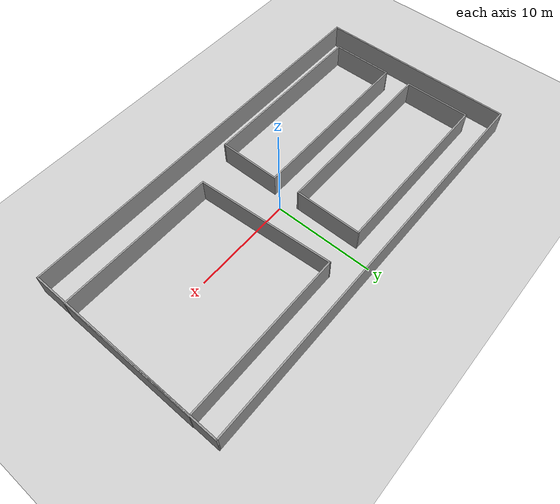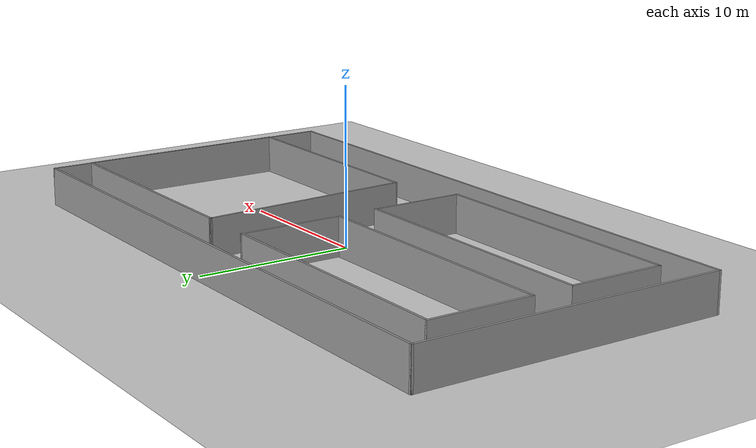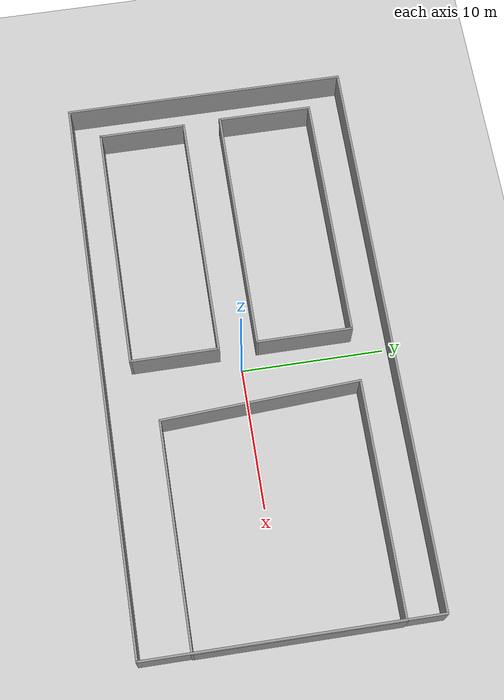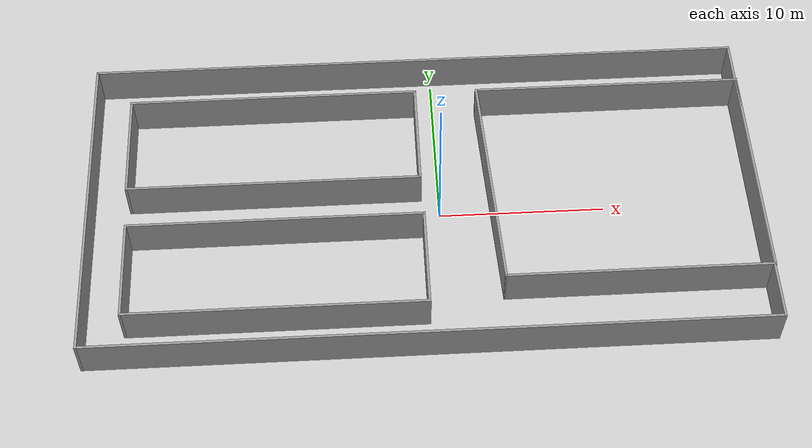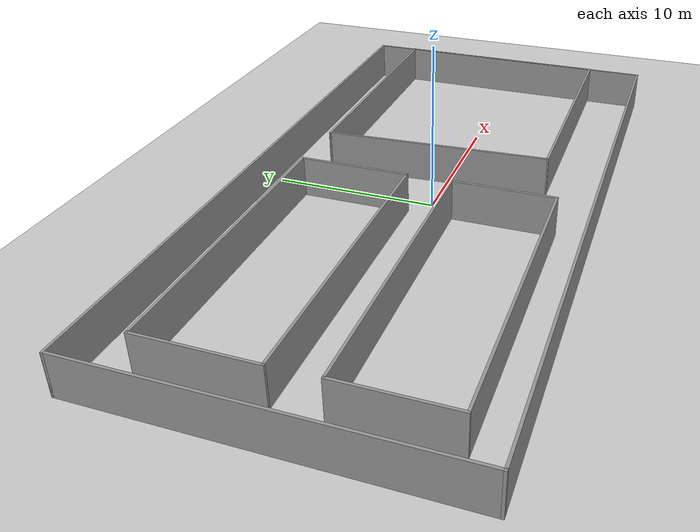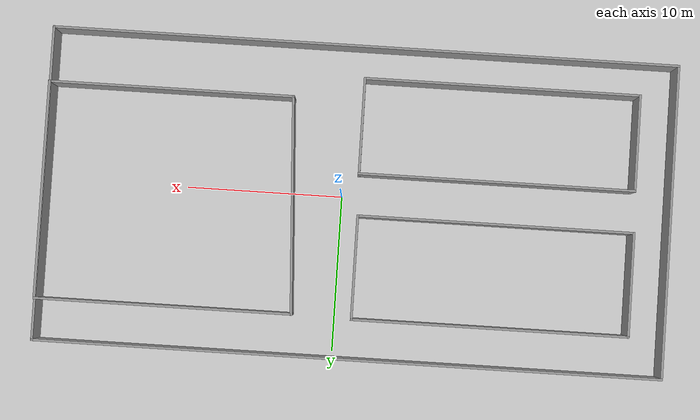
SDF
<sdf version="1.6">
 <world name="default">
  <light name="sun" type="directional">
   <pose>0 0 10 0 -0 0</pose>
   <diffuse>0.8 0.8 0.8 1</diffuse>
   <specular>0.2 0.2 0.2 1</specular>
   <attenuation>
    <range>1000</range>
    <constant>0.9</constant>
    <linear>0.01</linear>
    <quadratic>0.001</quadratic>
   </attenuation>
   <direction>-0.5 0.1 -0.9</direction>
  </light>
  <model name="ground_plane">
   <static>1</static>
   <link name="link">
    <collision name="collision">
     <geometry><plane><normal>0 0 1</normal><size>100 100</size></plane></geometry>
     <surface>
      <contact><collide_bitmask>65535</collide_bitmask></contact>
      <friction><ode><mu>100</mu><mu2>50</mu2></ode></friction>
     </surface>
    </collision>
    <visual name="visual">
     <cast_shadows>0</cast_shadows>
     <geometry><plane><normal>0 0 1</normal><size>100 100</size></plane></geometry>
     <material>
      <script><uri>file://media/materials/scripts/gazebo.material</uri><name>Gazebo/Grey</name></script>
     </material>
    </visual>
   </link>
  </model>
  <gravity>0 0 -9.8</gravity>
  <magnetic_field>6e-06 2.3e-05 -4.2e-05</magnetic_field>
  <atmosphere type="adiabatic"/>
  <physics name="default_physics" default="0" type="ode">
   <max_step_size>0.001</max_step_size>
   <real_time_factor>1</real_time_factor>
   <real_time_update_rate>1000</real_time_update_rate>
  </physics>
  <scene><ambient>0.4 0.4 0.4 1</ambient><background>0.7 0.7 0.7 1</background><shadows>1</shadows></scene>
  <audio><device>default</device></audio>
  <spherical_coordinates>
   <surface_model>EARTH_WGS84</surface_model>
   <latitude_deg>0</latitude_deg>
   <longitude_deg>0</longitude_deg>
   <elevation>0</elevation>
   <heading_deg>0</heading_deg>
  </spherical_coordinates>
  <model name="sec2">
   <pose>-0.953085 0.392455 0 0 -0 0</pose>
   <link name="Wall_0">
    <collision name="Wall_0_Collision">
     <geometry><box><size>40.15 0.15 2.5</size></box></geometry>
     <pose>0 0 1.25 0 -0 0</pose>
    </collision>
    <visual name="Wall_0_Visual">
     <pose>0 0 1.25 0 -0 0</pose>
     <geometry><box><size>40.15 0.15 2.5</size></box></geometry>
     <material>
      <script><uri>file://media/materials/scripts/gazebo.material</uri><name>Gazebo/Grey</name></script>
      <ambient>1 1 1 1</ambient>
     </material>
     <meta><layer>0</layer></meta>
    </visual>
    <pose>-0.023238 10 0 0 -0 0</pose>
   </link>
   <link name="Wall_1">
    <collision name="Wall_1_Collision">
     <geometry><box><size>20.15 0.15 2.5</size></box></geometry>
     <pose>0 0 1.25 0 -0 0</pose>
    </collision>
    <visual name="Wall_1_Visual">
     <pose>0 0 1.25 0 -0 0</pose>
     <geometry><box><size>20.15 0.15 2.5</size></box></geometry>
     <material>
      <script><uri>file://media/materials/scripts/gazebo.material</uri><name>Gazebo/Grey</name></script>
      <ambient>1 1 1 1</ambient>
     </material>
     <meta><layer>0</layer></meta>
    </visual>
    <pose>19.9768 0 0 0 -0 -1.5708</pose>
   </link>
   <link name="Wall_10">
    <collision name="Wall_10_Collision">
     <geometry><box><size>17.75 0.15 2.5</size></box></geometry>
     <pose>0 0 1.25 0 -0 0</pose>
    </collision>
    <visual name="Wall_10_Visual">
     <pose>0 0 1.25 0 -0 0</pose>
     <geometry><box><size>17.75 0.15 2.5</size></box></geometry>
     <material>
      <script><uri>file://media/materials/scripts/gazebo.material</uri><name>Gazebo/Grey</name></script>
      <ambient>1 1 1 1</ambient>
     </material>
     <meta><layer>0</layer></meta>
    </visual>
    <pose>-8.87076 -1.84852 0 0 -0 0</pose>
   </link>
   <link name="Wall_11">
    <collision name="Wall_11_Collision">
     <geometry><box><size>6.25 0.15 2.5</size></box></geometry>
     <pose>0 0 1.25 0 -0 0</pose>
    </collision>
    <visual name="Wall_11_Visual">
     <pose>0 0 1.25 0 -0 0</pose>
     <geometry><box><size>6.25 0.15 2.5</size></box></geometry>
     <material>
      <script><uri>file://media/materials/scripts/gazebo.material</uri><name>Gazebo/Grey</name></script>
      <ambient>1 1 1 1</ambient>
     </material>
     <meta><layer>0</layer></meta>
    </visual>
    <pose>-0.070761 -4.89852 0 0 -0 -1.5708</pose>
   </link>
   <link name="Wall_12">
    <collision name="Wall_12_Collision">
     <geometry><box><size>17.75 0.15 2.5</size></box></geometry>
     <pose>0 0 1.25 0 -0 0</pose>
    </collision>
    <visual name="Wall_12_Visual">
     <pose>0 0 1.25 0 -0 0</pose>
     <geometry><box><size>17.75 0.15 2.5</size></box></geometry>
     <material>
      <script><uri>file://media/materials/scripts/gazebo.material</uri><name>Gazebo/Grey</name></script>
      <ambient>1 1 1 1</ambient>
     </material>
     <meta><layer>0</layer></meta>
    </visual>
    <pose>-8.87076 -7.94852 0 0 -0 3.14159</pose>
   </link>
   <link name="Wall_13">
    <collision name="Wall_13_Collision">
     <geometry><box><size>6.25 0.15 2.5</size></box></geometry>
     <pose>0 0 1.25 0 -0 0</pose>
    </collision>
    <visual name="Wall_13_Visual">
     <pose>0 0 1.25 0 -0 0</pose>
     <geometry><box><size>6.25 0.15 2.5</size></box></geometry>
     <material>
      <script><uri>file://media/materials/scripts/gazebo.material</uri><name>Gazebo/Grey</name></script>
      <ambient>1 1 1 1</ambient>
     </material>
     <meta><layer>0</layer></meta>
    </visual>
    <pose>-17.6708 -4.89852 0 0 -0 1.5708</pose>
   </link>
   <link name="Wall_15">
    <collision name="Wall_15_Collision">
     <geometry><box><size>16.5 0.15 2.5</size></box></geometry>
     <pose>0 0 1.25 0 -0 0</pose>
    </collision>
    <visual name="Wall_15_Visual">
     <pose>0 0 1.25 0 -0 0</pose>
     <geometry><box><size>16.5 0.15 2.5</size></box></geometry>
     <material>
      <script><uri>file://media/materials/scripts/gazebo.material</uri><name>Gazebo/Grey</name></script>
      <ambient>1 1 1 1</ambient>
     </material>
     <meta><layer>0</layer></meta>
    </visual>
    <pose>11.8482 7.35148 0 0 -0 0</pose>
   </link>
   <link name="Wall_16">
    <collision name="Wall_16_Collision">
     <geometry><box><size>14 0.15 2.5</size></box></geometry>
     <pose>0 0 1.25 0 -0 0</pose>
    </collision>
    <visual name="Wall_16_Visual">
     <pose>0 0 1.25 0 -0 0</pose>
     <geometry><box><size>14 0.15 2.5</size></box></geometry>
     <material>
      <script><uri>file://media/materials/scripts/gazebo.material</uri><name>Gazebo/Grey</name></script>
      <ambient>1 1 1 1</ambient>
     </material>
     <meta><layer>0</layer></meta>
    </visual>
    <pose>20.0232 0.42648 0 0 -0 -1.5708</pose>
   </link>
   <link name="Wall_17">
    <collision name="Wall_17_Collision">
     <geometry><box><size>15.75 0.15 2.5</size></box></geometry>
     <pose>0 0 1.25 0 -0 0</pose>
    </collision>
    <visual name="Wall_17_Visual">
     <pose>0 0 1.25 0 -0 0</pose>
     <geometry><box><size>15.75 0.15 2.5</size></box></geometry>
     <material>
      <script><uri>file://media/materials/scripts/gazebo.material</uri><name>Gazebo/Grey</name></script>
      <ambient>1 1 1 1</ambient>
     </material>
     <meta><layer>0</layer></meta>
    </visual>
    <pose>12.2232 -6.49852 0 0 -0 3.14159</pose>
   </link>
   <link name="Wall_18">
    <collision name="Wall_18_Collision">
     <geometry><box><size>14.0203 0.15 2.5</size></box></geometry>
     <pose>0 0 1.25 0 -0 0</pose>
    </collision>
    <visual name="Wall_18_Visual">
     <pose>0 0 1.25 0 -0 0</pose>
     <geometry><box><size>14.0203 0.15 2.5</size></box></geometry>
     <material>
      <script><uri>file://media/materials/scripts/gazebo.material</uri><name>Gazebo/Grey</name></script>
      <ambient>1 1 1 1</ambient>
     </material>
     <meta><layer>0</layer></meta>
    </visual>
    <pose>4.04824 0.42648 0 0 -0 1.62489</pose>
   </link>
   <link name="Wall_2">
    <collision name="Wall_2_Collision">
     <geometry><box><size>40.15 0.15 2.5</size></box></geometry>
     <pose>0 0 1.25 0 -0 0</pose>
    </collision>
    <visual name="Wall_2_Visual">
     <pose>0 0 1.25 0 -0 0</pose>
     <geometry><box><size>40.15 0.15 2.5</size></box></geometry>
     <material>
      <script><uri>file://media/materials/scripts/gazebo.material</uri><name>Gazebo/Grey</name></script>
      <ambient>1 1 1 1</ambient>
     </material>
     <meta><layer>0</layer></meta>
    </visual>
    <pose>-0.023238 -10 0 0 -0 3.14159</pose>
   </link>
   <link name="Wall_3">
    <collision name="Wall_3_Collision">
     <geometry><box><size>20.15 0.15 2.5</size></box></geometry>
     <pose>0 0 1.25 0 -0 0</pose>
    </collision>
    <visual name="Wall_3_Visual">
     <pose>0 0 1.25 0 -0 0</pose>
     <geometry><box><size>20.15 0.15 2.5</size></box></geometry>
     <material>
      <script><uri>file://media/materials/scripts/gazebo.material</uri><name>Gazebo/Grey</name></script>
      <ambient>1 1 1 1</ambient>
     </material>
     <meta><layer>0</layer></meta>
    </visual>
    <pose>-20.0232 0 0 0 -0 1.5708</pose>
   </link>
   <link name="Wall_5">
    <collision name="Wall_5_Collision">
     <geometry><box><size>17.75 0.15 2.5</size></box></geometry>
     <pose>0 0 1.25 0 -0 0</pose>
    </collision>
    <visual name="Wall_5_Visual">
     <pose>0 0 1.25 0 -0 0</pose>
     <geometry><box><size>17.75 0.15 2.5</size></box></geometry>
     <material>
      <script><uri>file://media/materials/scripts/gazebo.material</uri><name>Gazebo/Grey</name></script>
      <ambient>1 1 1 1</ambient>
     </material>
     <meta><layer>0</layer></meta>
    </visual>
    <pose>-8.96276 7.44348 0 0 -0 0</pose>
   </link>
   <link name="Wall_6">
    <collision name="Wall_6_Collision">
     <geometry><box><size>6.75 0.15 2.5</size></box></geometry>
     <pose>0 0 1.25 0 -0 0</pose>
    </collision>
    <visual name="Wall_6_Visual">
     <pose>0 0 1.25 0 -0 0</pose>
     <geometry><box><size>6.75 0.15 2.5</size></box></geometry>
     <material>
      <script><uri>file://media/materials/scripts/gazebo.material</uri><name>Gazebo/Grey</name></script>
      <ambient>1 1 1 1</ambient>
     </material>
     <meta><layer>0</layer></meta>
    </visual>
    <pose>-0.162761 4.14348 0 0 -0 -1.5708</pose>
   </link>
   <link name="Wall_7">
    <collision name="Wall_7_Collision">
     <geometry><box><size>17.75 0.15 2.5</size></box></geometry>
     <pose>0 0 1.25 0 -0 0</pose>
    </collision>
    <visual name="Wall_7_Visual">
     <pose>0 0 1.25 0 -0 0</pose>
     <geometry><box><size>17.75 0.15 2.5</size></box></geometry>
     <material>
      <script><uri>file://media/materials/scripts/gazebo.material</uri><name>Gazebo/Grey</name></script>
      <ambient>1 1 1 1</ambient>
     </material>
     <meta><layer>0</layer></meta>
    </visual>
    <pose>-8.96276 0.84348 0 0 -0 3.14159</pose>
   </link>
   <link name="Wall_8">
    <collision name="Wall_8_Collision">
     <geometry><box><size>6.75 0.15 2.5</size></box></geometry>
     <pose>0 0 1.25 0 -0 0</pose>
    </collision>
    <visual name="Wall_8_Visual">
     <pose>0 0 1.25 0 -0 0</pose>
     <geometry><box><size>6.75 0.15 2.5</size></box></geometry>
     <material>
      <script><uri>file://media/materials/scripts/gazebo.material</uri><name>Gazebo/Grey</name></script>
      <ambient>1 1 1 1</ambient>
     </material>
     <meta><layer>0</layer></meta>
    </visual>
    <pose>-17.7628 4.14348 0 0 -0 1.5708</pose>
   </link>
   <static>1</static>
  </model>
 </world>
</sdf>
